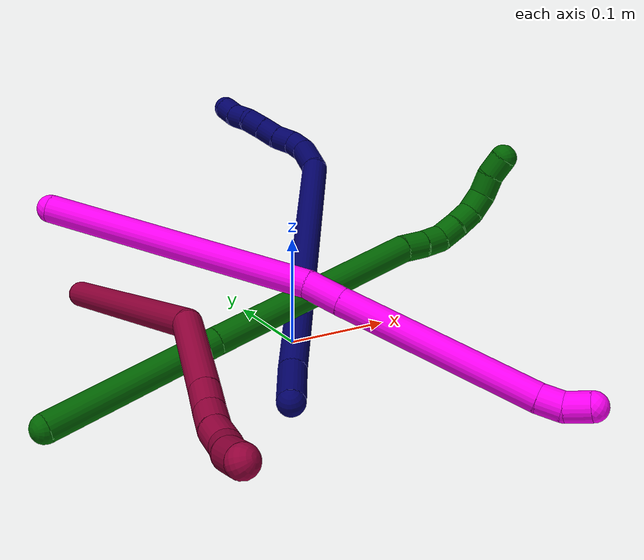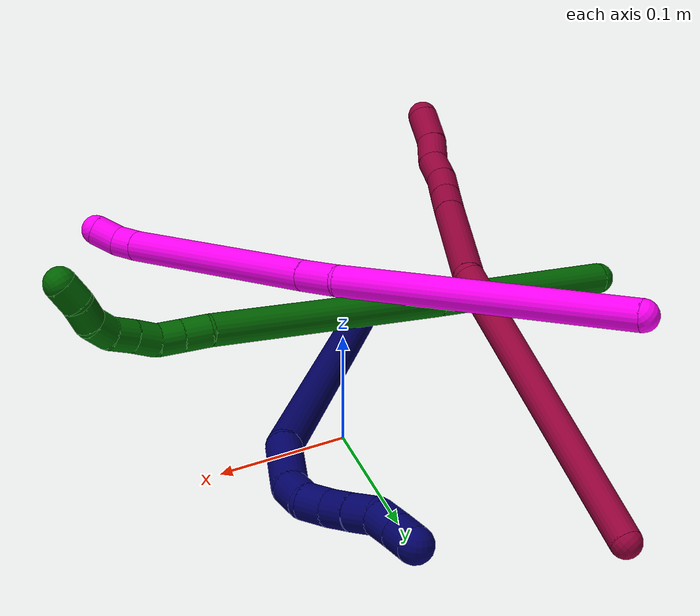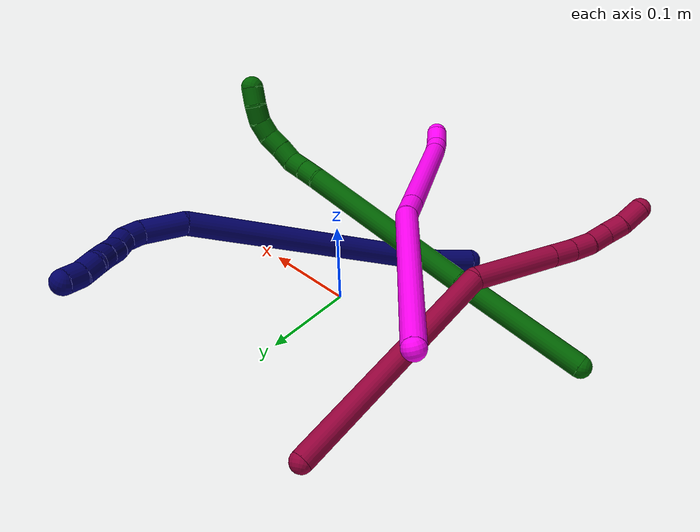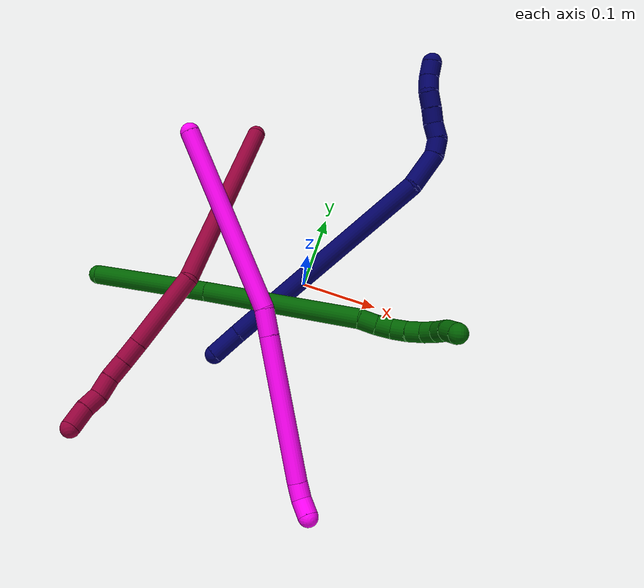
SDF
<sdf version="1.7">
 <world name="default">
  <model name="6">
   <static>0</static>
   <link name="6">
    <collision name="collision-cylinder-e_1_1_4">
     <pose>0.026273 -0.004799 -0.073867 3.07671 0.34106 2.76906</pose>
     <geometry><cylinder><radius>0.0125</radius><length>0.157095</length></cylinder></geometry>
     <surface>
      <friction><ode><mu>1.16</mu><mu2>1.16</mu2><slip1>0</slip1><slip2>0</slip2></ode></friction>
      <contact><ode><kp>1e+06</kp><kd>1</kd><max_vel>0</max_vel><min_depth>0.001</min_depth></ode></contact>
     </surface>
    </collision>
    <visual name="visual-cylinder-e_1_1_4">
     <pose>0.026273 -0.004799 -0.073867 3.07671 0.34106 2.76906</pose>
     <geometry><cylinder><radius>0.0125</radius><length>0.157095</length></cylinder></geometry>
     <material><ambient>0 0.392157 0.003922 1</ambient></material>
    </visual>
    <collision name="collision-cylinder-e_2_4_5">
     <pose>0.086943 -0.01743 -0.242009 3.05872 0.348746 2.67929</pose>
     <geometry><cylinder><radius>0.0125</radius><length>0.201316</length></cylinder></geometry>
     <surface>
      <friction><ode><mu>1.16</mu><mu2>1.16</mu2><slip1>0</slip1><slip2>0</slip2></ode></friction>
      <contact><ode><kp>1e+06</kp><kd>1</kd><max_vel>0</max_vel><min_depth>0.001</min_depth></ode></contact>
     </surface>
    </collision>
    <visual name="visual-cylinder-e_2_4_5">
     <pose>0.086943 -0.01743 -0.242009 3.05872 0.348746 2.67929</pose>
     <geometry><cylinder><radius>0.0125</radius><length>0.201316</length></cylinder></geometry>
     <material><ambient>0 0.392157 0.003922 1</ambient></material>
    </visual>
    <collision name="collision-cylinder-e_3_5_6">
     <pose>0.123873 -0.028022 -0.346401 2.87512 0.237029 1.45273</pose>
     <geometry><cylinder><radius>0.0125</radius><length>0.02158</length></cylinder></geometry>
     <surface>
      <friction><ode><mu>1.16</mu><mu2>1.16</mu2><slip1>0</slip1><slip2>0</slip2></ode></friction>
      <contact><ode><kp>1e+06</kp><kd>1</kd><max_vel>0</max_vel><min_depth>0.001</min_depth></ode></contact>
     </surface>
    </collision>
    <visual name="visual-cylinder-e_3_5_6">
     <pose>0.123873 -0.028022 -0.346401 2.87512 0.237029 1.45273</pose>
     <geometry><cylinder><radius>0.0125</radius><length>0.02158</length></cylinder></geometry>
     <material><ambient>0 0.392157 0.003922 1</ambient></material>
    </visual>
    <collision name="collision-cylinder-e_4_6_7">
     <pose>0.129125 -0.032367 -0.366013 2.97637 0.275204 2.06379</pose>
     <geometry><cylinder><radius>0.0125</radius><length>0.020003</length></cylinder></geometry>
     <surface>
      <friction><ode><mu>1.16</mu><mu2>1.16</mu2><slip1>0</slip1><slip2>0</slip2></ode></friction>
      <contact><ode><kp>1e+06</kp><kd>1</kd><max_vel>0</max_vel><min_depth>0.001</min_depth></ode></contact>
     </surface>
    </collision>
    <visual name="visual-cylinder-e_4_6_7">
     <pose>0.129125 -0.032367 -0.366013 2.97637 0.275204 2.06379</pose>
     <geometry><cylinder><radius>0.0125</radius><length>0.020003</length></cylinder></geometry>
     <material><ambient>0 0.392157 0.003922 1</ambient></material>
    </visual>
    <collision name="collision-cylinder-e_5_7_8">
     <pose>0.137788 -0.034206 -0.383545 3.10985 0.636614 3.04533</pose>
     <geometry><cylinder><radius>0.0125</radius><length>0.020001</length></cylinder></geometry>
     <surface>
      <friction><ode><mu>1.16</mu><mu2>1.16</mu2><slip1>0</slip1><slip2>0</slip2></ode></friction>
      <contact><ode><kp>1e+06</kp><kd>1</kd><max_vel>0</max_vel><min_depth>0.001</min_depth></ode></contact>
     </surface>
    </collision>
    <visual name="visual-cylinder-e_5_7_8">
     <pose>0.137788 -0.034206 -0.383545 3.10985 0.636614 3.04533</pose>
     <geometry><cylinder><radius>0.0125</radius><length>0.020001</length></cylinder></geometry>
     <material><ambient>0 0.392157 0.003922 1</ambient></material>
    </visual>
    <collision name="collision-cylinder-e_6_8_9">
     <pose>0.149275 -0.033827 -0.399884 -3.06535 0.587275 -2.89067</pose>
     <geometry><cylinder><radius>0.0125</radius><length>0.020003</length></cylinder></geometry>
     <surface>
      <friction><ode><mu>1.16</mu><mu2>1.16</mu2><slip1>0</slip1><slip2>0</slip2></ode></friction>
      <contact><ode><kp>1e+06</kp><kd>1</kd><max_vel>0</max_vel><min_depth>0.001</min_depth></ode></contact>
     </surface>
    </collision>
    <visual name="visual-cylinder-e_6_8_9">
     <pose>0.149275 -0.033827 -0.399884 -3.06535 0.587275 -2.89067</pose>
     <geometry><cylinder><radius>0.0125</radius><length>0.020003</length></cylinder></geometry>
     <material><ambient>0 0.392157 0.003922 1</ambient></material>
    </visual>
    <collision name="collision-cylinder-e_7_9_10">
     <pose>0.162672 -0.031494 -0.414137 -2.86352 0.903448 -2.57997</pose>
     <geometry><cylinder><radius>0.0125</radius><length>0.02</length></cylinder></geometry>
     <surface>
      <friction><ode><mu>1.16</mu><mu2>1.16</mu2><slip1>0</slip1><slip2>0</slip2></ode></friction>
      <contact><ode><kp>1e+06</kp><kd>1</kd><max_vel>0</max_vel><min_depth>0.001</min_depth></ode></contact>
     </surface>
    </collision>
    <visual name="visual-cylinder-e_7_9_10">
     <pose>0.162672 -0.031494 -0.414137 -2.86352 0.903448 -2.57997</pose>
     <geometry><cylinder><radius>0.0125</radius><length>0.02</length></cylinder></geometry>
     <material><ambient>0 0.392157 0.003922 1</ambient></material>
    </visual>
    <collision name="collision-cylinder-e_8_10_11">
     <pose>0.179943 -0.027785 -0.422787 -2.50147 1.22764 -2.2622</pose>
     <geometry><cylinder><radius>0.0125</radius><length>0.02</length></cylinder></geometry>
     <surface>
      <friction><ode><mu>1.16</mu><mu2>1.16</mu2><slip1>0</slip1><slip2>0</slip2></ode></friction>
      <contact><ode><kp>1e+06</kp><kd>1</kd><max_vel>0</max_vel><min_depth>0.001</min_depth></ode></contact>
     </surface>
    </collision>
    <visual name="visual-cylinder-e_8_10_11">
     <pose>0.179943 -0.027785 -0.422787 -2.50147 1.22764 -2.2622</pose>
     <geometry><cylinder><radius>0.0125</radius><length>0.02</length></cylinder></geometry>
     <material><ambient>0 0.392157 0.003922 1</ambient></material>
    </visual>
    <collision name="collision-cylinder-e_9_11_2">
     <pose>0.198802 -0.026178 -0.428758 3.01901 1.23487 2.96917</pose>
     <geometry><cylinder><radius>0.0125</radius><length>0.020001</length></cylinder></geometry>
     <surface>
      <friction><ode><mu>1.16</mu><mu2>1.16</mu2><slip1>0</slip1><slip2>0</slip2></ode></friction>
      <contact><ode><kp>1e+06</kp><kd>1</kd><max_vel>0</max_vel><min_depth>0.001</min_depth></ode></contact>
     </surface>
    </collision>
    <visual name="visual-cylinder-e_9_11_2">
     <pose>0.198802 -0.026178 -0.428758 3.01901 1.23487 2.96917</pose>
     <geometry><cylinder><radius>0.0125</radius><length>0.020001</length></cylinder></geometry>
     <material><ambient>0 0.392157 0.003922 1</ambient></material>
    </visual>
    <collision name="collision-sphere-2">
     <pose>0.208243 -0.026582 -0.432029 0 -0 0</pose>
     <geometry><sphere><radius>0.0125</radius></sphere></geometry>
     <surface>
      <friction><ode><mu>1.16</mu><mu2>1.16</mu2><slip1>0</slip1><slip2>0</slip2></ode></friction>
      <contact><ode><kp>1e+06</kp><kd>1</kd><max_vel>0</max_vel><min_depth>0.001</min_depth></ode></contact>
     </surface>
    </collision>
    <visual name="visual-sphere-2">
     <pose>0.208243 -0.026582 -0.432029 0 -0 0</pose>
     <geometry><sphere><radius>0.0125</radius></sphere></geometry>
     <material><ambient>0 0.392157 0.003922 1</ambient></material>
    </visual>
    <collision name="collision-sphere-11">
     <pose>0.18936 -0.025775 -0.425486 0 -0 0</pose>
     <geometry><sphere><radius>0.0125</radius></sphere></geometry>
     <surface>
      <friction><ode><mu>1.16</mu><mu2>1.16</mu2><slip1>0</slip1><slip2>0</slip2></ode></friction>
      <contact><ode><kp>1e+06</kp><kd>1</kd><max_vel>0</max_vel><min_depth>0.001</min_depth></ode></contact>
     </surface>
    </collision>
    <visual name="visual-sphere-11">
     <pose>0.18936 -0.025775 -0.425486 0 -0 0</pose>
     <geometry><sphere><radius>0.0125</radius></sphere></geometry>
     <material><ambient>0 0.392157 0.003922 1</ambient></material>
    </visual>
    <collision name="collision-sphere-10">
     <pose>0.170526 -0.029795 -0.420089 0 -0 0</pose>
     <geometry><sphere><radius>0.0125</radius></sphere></geometry>
     <surface>
      <friction><ode><mu>1.16</mu><mu2>1.16</mu2><slip1>0</slip1><slip2>0</slip2></ode></friction>
      <contact><ode><kp>1e+06</kp><kd>1</kd><max_vel>0</max_vel><min_depth>0.001</min_depth></ode></contact>
     </surface>
    </collision>
    <visual name="visual-sphere-10">
     <pose>0.170526 -0.029795 -0.420089 0 -0 0</pose>
     <geometry><sphere><radius>0.0125</radius></sphere></geometry>
     <material><ambient>0 0.392157 0.003922 1</ambient></material>
    </visual>
    <collision name="collision-sphere-9">
     <pose>0.154817 -0.033193 -0.408186 0 -0 0</pose>
     <geometry><sphere><radius>0.0125</radius></sphere></geometry>
     <surface>
      <friction><ode><mu>1.16</mu><mu2>1.16</mu2><slip1>0</slip1><slip2>0</slip2></ode></friction>
      <contact><ode><kp>1e+06</kp><kd>1</kd><max_vel>0</max_vel><min_depth>0.001</min_depth></ode></contact>
     </surface>
    </collision>
    <visual name="visual-sphere-9">
     <pose>0.154817 -0.033193 -0.408186 0 -0 0</pose>
     <geometry><sphere><radius>0.0125</radius></sphere></geometry>
     <material><ambient>0 0.392157 0.003922 1</ambient></material>
    </visual>
    <collision name="collision-sphere-4">
     <pose>0.052546 -0.009599 -0.147735 0 -0 0</pose>
     <geometry><sphere><radius>0.0125</radius></sphere></geometry>
     <surface>
      <friction><ode><mu>1.16</mu><mu2>1.16</mu2><slip1>0</slip1><slip2>0</slip2></ode></friction>
      <contact><ode><kp>1e+06</kp><kd>1</kd><max_vel>0</max_vel><min_depth>0.001</min_depth></ode></contact>
     </surface>
    </collision>
    <visual name="visual-sphere-4">
     <pose>0.052546 -0.009599 -0.147735 0 -0 0</pose>
     <geometry><sphere><radius>0.0125</radius></sphere></geometry>
     <material><ambient>0 0.392157 0.003922 1</ambient></material>
    </visual>
    <collision name="collision-sphere-1">
     <geometry><sphere><radius>0.0125</radius></sphere></geometry>
     <surface>
      <friction><ode><mu>1.16</mu><mu2>1.16</mu2><slip1>0</slip1><slip2>0</slip2></ode></friction>
      <contact><ode><kp>1e+06</kp><kd>1</kd><max_vel>0</max_vel><min_depth>0.001</min_depth></ode></contact>
     </surface>
    </collision>
    <visual name="visual-sphere-1">
     <geometry><sphere><radius>0.0125</radius></sphere></geometry>
     <material><ambient>0 0.392157 0.003922 1</ambient></material>
    </visual>
    <collision name="collision-sphere-8">
     <pose>0.143733 -0.034461 -0.391582 0 -0 0</pose>
     <geometry><sphere><radius>0.0125</radius></sphere></geometry>
     <surface>
      <friction><ode><mu>1.16</mu><mu2>1.16</mu2><slip1>0</slip1><slip2>0</slip2></ode></friction>
      <contact><ode><kp>1e+06</kp><kd>1</kd><max_vel>0</max_vel><min_depth>0.001</min_depth></ode></contact>
     </surface>
    </collision>
    <visual name="visual-sphere-8">
     <pose>0.143733 -0.034461 -0.391582 0 -0 0</pose>
     <geometry><sphere><radius>0.0125</radius></sphere></geometry>
     <material><ambient>0 0.392157 0.003922 1</ambient></material>
    </visual>
    <collision name="collision-sphere-5">
     <pose>0.12134 -0.02526 -0.336282 0 -0 0</pose>
     <geometry><sphere><radius>0.0125</radius></sphere></geometry>
     <surface>
      <friction><ode><mu>1.16</mu><mu2>1.16</mu2><slip1>0</slip1><slip2>0</slip2></ode></friction>
      <contact><ode><kp>1e+06</kp><kd>1</kd><max_vel>0</max_vel><min_depth>0.001</min_depth></ode></contact>
     </surface>
    </collision>
    <visual name="visual-sphere-5">
     <pose>0.12134 -0.02526 -0.336282 0 -0 0</pose>
     <geometry><sphere><radius>0.0125</radius></sphere></geometry>
     <material><ambient>0 0.392157 0.003922 1</ambient></material>
    </visual>
    <collision name="collision-sphere-6">
     <pose>0.126407 -0.030784 -0.356519 0 -0 0</pose>
     <geometry><sphere><radius>0.0125</radius></sphere></geometry>
     <surface>
      <friction><ode><mu>1.16</mu><mu2>1.16</mu2><slip1>0</slip1><slip2>0</slip2></ode></friction>
      <contact><ode><kp>1e+06</kp><kd>1</kd><max_vel>0</max_vel><min_depth>0.001</min_depth></ode></contact>
     </surface>
    </collision>
    <visual name="visual-sphere-6">
     <pose>0.126407 -0.030784 -0.356519 0 -0 0</pose>
     <geometry><sphere><radius>0.0125</radius></sphere></geometry>
     <material><ambient>0 0.392157 0.003922 1</ambient></material>
    </visual>
    <collision name="collision-sphere-7">
     <pose>0.131843 -0.033951 -0.375507 0 -0 0</pose>
     <geometry><sphere><radius>0.0125</radius></sphere></geometry>
     <surface>
      <friction><ode><mu>1.16</mu><mu2>1.16</mu2><slip1>0</slip1><slip2>0</slip2></ode></friction>
      <contact><ode><kp>1e+06</kp><kd>1</kd><max_vel>0</max_vel><min_depth>0.001</min_depth></ode></contact>
     </surface>
    </collision>
    <visual name="visual-sphere-7">
     <pose>0.131843 -0.033951 -0.375507 0 -0 0</pose>
     <geometry><sphere><radius>0.0125</radius></sphere></geometry>
     <material><ambient>0 0.392157 0.003922 1</ambient></material>
    </visual>
    <inertial>
     <pose>0.086914 -0.01717 -0.232212 0 -0 0</pose>
     <mass>0.5</mass>
     <inertia>
      <ixx>-0.000452</ixx>
      <ixy>0</ixy>
      <ixz>0</ixz>
      <iyy>0.001339</iyy>
      <iyz>0</iyz>
      <izz>-0.000311</izz>
     </inertia>
    </inertial>
   </link>
   <pose>-0.263988 -0.081896 0.01161 1.42659 -1.15291 -1.15266</pose>
  </model>
  <model name="7">
   <static>0</static>
   <link name="7">
    <collision name="collision-cylinder-e_1_1_4">
     <pose>0.01379 0.015444 -0.002782 -1.74899 0.720953 -0.847207</pose>
     <geometry><cylinder><radius>0.0125</radius><length>0.041781</length></cylinder></geometry>
     <surface>
      <friction><ode><mu>1.16</mu><mu2>1.16</mu2><slip1>0</slip1><slip2>0</slip2></ode></friction>
      <contact><ode><kp>1e+06</kp><kd>1</kd><max_vel>0</max_vel><min_depth>0.001</min_depth></ode></contact>
     </surface>
    </collision>
    <visual name="visual-cylinder-e_1_1_4">
     <pose>0.01379 0.015444 -0.002782 -1.74899 0.720953 -0.847207</pose>
     <geometry><cylinder><radius>0.0125</radius><length>0.041781</length></cylinder></geometry>
     <material><ambient>0.003922 0 0.403922 1</ambient></material>
    </visual>
    <collision name="collision-cylinder-e_2_4_5">
     <pose>0.130347 0.13226 -0.006504 -1.58008 0.792209 -0.79884</pose>
     <geometry><cylinder><radius>0.0125</radius><length>0.288709</length></cylinder></geometry>
     <surface>
      <friction><ode><mu>1.16</mu><mu2>1.16</mu2><slip1>0</slip1><slip2>0</slip2></ode></friction>
      <contact><ode><kp>1e+06</kp><kd>1</kd><max_vel>0</max_vel><min_depth>0.001</min_depth></ode></contact>
     </surface>
    </collision>
    <visual name="visual-cylinder-e_2_4_5">
     <pose>0.130347 0.13226 -0.006504 -1.58008 0.792209 -0.79884</pose>
     <geometry><cylinder><radius>0.0125</radius><length>0.288709</length></cylinder></geometry>
     <material><ambient>0.003922 0 0.403922 1</ambient></material>
    </visual>
    <collision name="collision-cylinder-e_3_5_6">
     <pose>0.243964 0.254672 -0.011853 -1.77729 0.46746 -0.570267</pose>
     <geometry><cylinder><radius>0.0125</radius><length>0.04816</length></cylinder></geometry>
     <surface>
      <friction><ode><mu>1.16</mu><mu2>1.16</mu2><slip1>0</slip1><slip2>0</slip2></ode></friction>
      <contact><ode><kp>1e+06</kp><kd>1</kd><max_vel>0</max_vel><min_depth>0.001</min_depth></ode></contact>
     </surface>
    </collision>
    <visual name="visual-cylinder-e_3_5_6">
     <pose>0.243964 0.254672 -0.011853 -1.77729 0.46746 -0.570267</pose>
     <geometry><cylinder><radius>0.0125</radius><length>0.04816</length></cylinder></geometry>
     <material><ambient>0.003922 0 0.403922 1</ambient></material>
    </visual>
    <collision name="collision-cylinder-e_4_6_7">
     <pose>0.25597 0.286218 -0.016538 -1.59721 0.109388 -0.11231</pose>
     <geometry><cylinder><radius>0.0125</radius><length>0.021145</length></cylinder></geometry>
     <surface>
      <friction><ode><mu>1.16</mu><mu2>1.16</mu2><slip1>0</slip1><slip2>0</slip2></ode></friction>
      <contact><ode><kp>1e+06</kp><kd>1</kd><max_vel>0</max_vel><min_depth>0.001</min_depth></ode></contact>
     </surface>
    </collision>
    <visual name="visual-cylinder-e_4_6_7">
     <pose>0.25597 0.286218 -0.016538 -1.59721 0.109388 -0.11231</pose>
     <geometry><cylinder><radius>0.0125</radius><length>0.021145</length></cylinder></geometry>
     <material><ambient>0.003922 0 0.403922 1</ambient></material>
    </visual>
    <collision name="collision-cylinder-e_5_7_8">
     <pose>0.253884 0.306162 -0.015683 -1.45144 -0.328459 0.291978</pose>
     <geometry><cylinder><radius>0.0125</radius><length>0.020085</length></cylinder></geometry>
     <surface>
      <friction><ode><mu>1.16</mu><mu2>1.16</mu2><slip1>0</slip1><slip2>0</slip2></ode></friction>
      <contact><ode><kp>1e+06</kp><kd>1</kd><max_vel>0</max_vel><min_depth>0.001</min_depth></ode></contact>
     </surface>
    </collision>
    <visual name="visual-cylinder-e_5_7_8">
     <pose>0.253884 0.306162 -0.015683 -1.45144 -0.328459 0.291978</pose>
     <geometry><cylinder><radius>0.0125</radius><length>0.020085</length></cylinder></geometry>
     <material><ambient>0.003922 0 0.403922 1</ambient></material>
    </visual>
    <collision name="collision-cylinder-e_6_8_9">
     <pose>0.248931 0.325188 -0.012126 -1.32298 -0.171551 0.13368</pose>
     <geometry><cylinder><radius>0.0125</radius><length>0.020075</length></cylinder></geometry>
     <surface>
      <friction><ode><mu>1.16</mu><mu2>1.16</mu2><slip1>0</slip1><slip2>0</slip2></ode></friction>
      <contact><ode><kp>1e+06</kp><kd>1</kd><max_vel>0</max_vel><min_depth>0.001</min_depth></ode></contact>
     </surface>
    </collision>
    <visual name="visual-cylinder-e_6_8_9">
     <pose>0.248931 0.325188 -0.012126 -1.32298 -0.171551 0.13368</pose>
     <geometry><cylinder><radius>0.0125</radius><length>0.020075</length></cylinder></geometry>
     <material><ambient>0.003922 0 0.403922 1</ambient></material>
    </visual>
    <collision name="collision-cylinder-e_7_9_10">
     <pose>0.244914 0.344177 -0.007182 -1.30912 -0.232432 0.178705</pose>
     <geometry><cylinder><radius>0.0125</radius><length>0.020001</length></cylinder></geometry>
     <surface>
      <friction><ode><mu>1.16</mu><mu2>1.16</mu2><slip1>0</slip1><slip2>0</slip2></ode></friction>
      <contact><ode><kp>1e+06</kp><kd>1</kd><max_vel>0</max_vel><min_depth>0.001</min_depth></ode></contact>
     </surface>
    </collision>
    <visual name="visual-cylinder-e_7_9_10">
     <pose>0.244914 0.344177 -0.007182 -1.30912 -0.232432 0.178705</pose>
     <geometry><cylinder><radius>0.0125</radius><length>0.020001</length></cylinder></geometry>
     <material><ambient>0.003922 0 0.403922 1</ambient></material>
    </visual>
    <collision name="collision-cylinder-e_8_10_11">
     <pose>0.241659 0.363484 -0.00573 -1.67794 -0.095193 0.105961</pose>
     <geometry><cylinder><radius>0.0125</radius><length>0.020019</length></cylinder></geometry>
     <surface>
      <friction><ode><mu>1.16</mu><mu2>1.16</mu2><slip1>0</slip1><slip2>0</slip2></ode></friction>
      <contact><ode><kp>1e+06</kp><kd>1</kd><max_vel>0</max_vel><min_depth>0.001</min_depth></ode></contact>
     </surface>
    </collision>
    <visual name="visual-cylinder-e_8_10_11">
     <pose>0.241659 0.363484 -0.00573 -1.67794 -0.095193 0.105961</pose>
     <geometry><cylinder><radius>0.0125</radius><length>0.020019</length></cylinder></geometry>
     <material><ambient>0.003922 0 0.403922 1</ambient></material>
    </visual>
    <collision name="collision-cylinder-e_9_11_2">
     <pose>0.241723 0.383351 -0.006692 -1.56035 0.101585 -0.100531</pose>
     <geometry><cylinder><radius>0.0125</radius><length>0.020024</length></cylinder></geometry>
     <surface>
      <friction><ode><mu>1.16</mu><mu2>1.16</mu2><slip1>0</slip1><slip2>0</slip2></ode></friction>
      <contact><ode><kp>1e+06</kp><kd>1</kd><max_vel>0</max_vel><min_depth>0.001</min_depth></ode></contact>
     </surface>
    </collision>
    <visual name="visual-cylinder-e_9_11_2">
     <pose>0.241723 0.383351 -0.006692 -1.56035 0.101585 -0.100531</pose>
     <geometry><cylinder><radius>0.0125</radius><length>0.020024</length></cylinder></geometry>
     <material><ambient>0.003922 0 0.403922 1</ambient></material>
    </visual>
    <collision name="collision-sphere-2">
     <pose>0.242738 0.393311 -0.006588 0 -0 0</pose>
     <geometry><sphere><radius>0.0125</radius></sphere></geometry>
     <surface>
      <friction><ode><mu>1.16</mu><mu2>1.16</mu2><slip1>0</slip1><slip2>0</slip2></ode></friction>
      <contact><ode><kp>1e+06</kp><kd>1</kd><max_vel>0</max_vel><min_depth>0.001</min_depth></ode></contact>
     </surface>
    </collision>
    <visual name="visual-sphere-2">
     <pose>0.242738 0.393311 -0.006588 0 -0 0</pose>
     <geometry><sphere><radius>0.0125</radius></sphere></geometry>
     <material><ambient>0.003922 0 0.403922 1</ambient></material>
    </visual>
    <collision name="collision-sphere-11">
     <pose>0.240708 0.373391 -0.006796 0 -0 0</pose>
     <geometry><sphere><radius>0.0125</radius></sphere></geometry>
     <surface>
      <friction><ode><mu>1.16</mu><mu2>1.16</mu2><slip1>0</slip1><slip2>0</slip2></ode></friction>
      <contact><ode><kp>1e+06</kp><kd>1</kd><max_vel>0</max_vel><min_depth>0.001</min_depth></ode></contact>
     </surface>
    </collision>
    <visual name="visual-sphere-11">
     <pose>0.240708 0.373391 -0.006796 0 -0 0</pose>
     <geometry><sphere><radius>0.0125</radius></sphere></geometry>
     <material><ambient>0.003922 0 0.403922 1</ambient></material>
    </visual>
    <collision name="collision-sphere-10">
     <pose>0.242611 0.353577 -0.004665 0 -0 0</pose>
     <geometry><sphere><radius>0.0125</radius></sphere></geometry>
     <surface>
      <friction><ode><mu>1.16</mu><mu2>1.16</mu2><slip1>0</slip1><slip2>0</slip2></ode></friction>
      <contact><ode><kp>1e+06</kp><kd>1</kd><max_vel>0</max_vel><min_depth>0.001</min_depth></ode></contact>
     </surface>
    </collision>
    <visual name="visual-sphere-10">
     <pose>0.242611 0.353577 -0.004665 0 -0 0</pose>
     <geometry><sphere><radius>0.0125</radius></sphere></geometry>
     <material><ambient>0.003922 0 0.403922 1</ambient></material>
    </visual>
    <collision name="collision-sphere-9">
     <pose>0.247218 0.334776 -0.0097 0 -0 0</pose>
     <geometry><sphere><radius>0.0125</radius></sphere></geometry>
     <surface>
      <friction><ode><mu>1.16</mu><mu2>1.16</mu2><slip1>0</slip1><slip2>0</slip2></ode></friction>
      <contact><ode><kp>1e+06</kp><kd>1</kd><max_vel>0</max_vel><min_depth>0.001</min_depth></ode></contact>
     </surface>
    </collision>
    <visual name="visual-sphere-9">
     <pose>0.247218 0.334776 -0.0097 0 -0 0</pose>
     <geometry><sphere><radius>0.0125</radius></sphere></geometry>
     <material><ambient>0.003922 0 0.403922 1</ambient></material>
    </visual>
    <collision name="collision-sphere-4">
     <pose>0.02758 0.030888 -0.005563 0 -0 0</pose>
     <geometry><sphere><radius>0.0125</radius></sphere></geometry>
     <surface>
      <friction><ode><mu>1.16</mu><mu2>1.16</mu2><slip1>0</slip1><slip2>0</slip2></ode></friction>
      <contact><ode><kp>1e+06</kp><kd>1</kd><max_vel>0</max_vel><min_depth>0.001</min_depth></ode></contact>
     </surface>
    </collision>
    <visual name="visual-sphere-4">
     <pose>0.02758 0.030888 -0.005563 0 -0 0</pose>
     <geometry><sphere><radius>0.0125</radius></sphere></geometry>
     <material><ambient>0.003922 0 0.403922 1</ambient></material>
    </visual>
    <collision name="collision-sphere-1">
     <geometry><sphere><radius>0.0125</radius></sphere></geometry>
     <surface>
      <friction><ode><mu>1.16</mu><mu2>1.16</mu2><slip1>0</slip1><slip2>0</slip2></ode></friction>
      <contact><ode><kp>1e+06</kp><kd>1</kd><max_vel>0</max_vel><min_depth>0.001</min_depth></ode></contact>
     </surface>
    </collision>
    <visual name="visual-sphere-1">
     <geometry><sphere><radius>0.0125</radius></sphere></geometry>
     <material><ambient>0.003922 0 0.403922 1</ambient></material>
    </visual>
    <collision name="collision-sphere-8">
     <pose>0.250645 0.3156 -0.014552 0 -0 0</pose>
     <geometry><sphere><radius>0.0125</radius></sphere></geometry>
     <surface>
      <friction><ode><mu>1.16</mu><mu2>1.16</mu2><slip1>0</slip1><slip2>0</slip2></ode></friction>
      <contact><ode><kp>1e+06</kp><kd>1</kd><max_vel>0</max_vel><min_depth>0.001</min_depth></ode></contact>
     </surface>
    </collision>
    <visual name="visual-sphere-8">
     <pose>0.250645 0.3156 -0.014552 0 -0 0</pose>
     <geometry><sphere><radius>0.0125</radius></sphere></geometry>
     <material><ambient>0.003922 0 0.403922 1</ambient></material>
    </visual>
    <collision name="collision-sphere-5">
     <pose>0.233113 0.233632 -0.007445 0 -0 0</pose>
     <geometry><sphere><radius>0.0125</radius></sphere></geometry>
     <surface>
      <friction><ode><mu>1.16</mu><mu2>1.16</mu2><slip1>0</slip1><slip2>0</slip2></ode></friction>
      <contact><ode><kp>1e+06</kp><kd>1</kd><max_vel>0</max_vel><min_depth>0.001</min_depth></ode></contact>
     </surface>
    </collision>
    <visual name="visual-sphere-5">
     <pose>0.233113 0.233632 -0.007445 0 -0 0</pose>
     <geometry><sphere><radius>0.0125</radius></sphere></geometry>
     <material><ambient>0.003922 0 0.403922 1</ambient></material>
    </visual>
    <collision name="collision-sphere-6">
     <pose>0.254815 0.275712 -0.01626 0 -0 0</pose>
     <geometry><sphere><radius>0.0125</radius></sphere></geometry>
     <surface>
      <friction><ode><mu>1.16</mu><mu2>1.16</mu2><slip1>0</slip1><slip2>0</slip2></ode></friction>
      <contact><ode><kp>1e+06</kp><kd>1</kd><max_vel>0</max_vel><min_depth>0.001</min_depth></ode></contact>
     </surface>
    </collision>
    <visual name="visual-sphere-6">
     <pose>0.254815 0.275712 -0.01626 0 -0 0</pose>
     <geometry><sphere><radius>0.0125</radius></sphere></geometry>
     <material><ambient>0.003922 0 0.403922 1</ambient></material>
    </visual>
    <collision name="collision-sphere-7">
     <pose>0.257124 0.296724 -0.016815 0 -0 0</pose>
     <geometry><sphere><radius>0.0125</radius></sphere></geometry>
     <surface>
      <friction><ode><mu>1.16</mu><mu2>1.16</mu2><slip1>0</slip1><slip2>0</slip2></ode></friction>
      <contact><ode><kp>1e+06</kp><kd>1</kd><max_vel>0</max_vel><min_depth>0.001</min_depth></ode></contact>
     </surface>
    </collision>
    <visual name="visual-sphere-7">
     <pose>0.257124 0.296724 -0.016815 0 -0 0</pose>
     <geometry><sphere><radius>0.0125</radius></sphere></geometry>
     <material><ambient>0.003922 0 0.403922 1</ambient></material>
    </visual>
    <inertial>
     <pose>0.160087 0.183323 -0.007731 0 -0 0</pose>
     <mass>0.5</mass>
     <inertia><ixx>4e-06</ixx><ixy>0</ixy><ixz>0</ixz><iyy>2.7e-05</iyy><iyz>0</iyz><izz>-0.002886</izz></inertia>
    </inertial>
   </link>
   <pose>-0.077833 -0.134448 0.01149 0.242651 -0.311762 0.139407</pose>
  </model>
  <model name="8">
   <static>0</static>
   <link name="8">
    <collision name="collision-cylinder-e_1_1_4">
     <pose>0.043805 -0.051396 0.113165 0.426313 0.338849 0.074018</pose>
     <geometry><cylinder><radius>0.0125</radius><length>0.263567</length></cylinder></geometry>
     <surface>
      <friction><ode><mu>1.16</mu><mu2>1.16</mu2><slip1>0</slip1><slip2>0</slip2></ode></friction>
      <contact><ode><kp>1e+06</kp><kd>1</kd><max_vel>0</max_vel><min_depth>0.001</min_depth></ode></contact>
     </surface>
    </collision>
    <visual name="visual-cylinder-e_1_1_4">
     <pose>0.043805 -0.051396 0.113165 0.426313 0.338849 0.074018</pose>
     <geometry><cylinder><radius>0.0125</radius><length>0.263567</length></cylinder></geometry>
     <material><ambient>0.584314 0 0.227451 1</ambient></material>
    </visual>
    <collision name="collision-cylinder-e_2_4_5">
     <pose>0.118859 -0.133004 0.254132 0.826937 0.650562 0.293822</pose>
     <geometry><cylinder><radius>0.0125</radius><length>0.103193</length></cylinder></geometry>
     <surface>
      <friction><ode><mu>1.16</mu><mu2>1.16</mu2><slip1>0</slip1><slip2>0</slip2></ode></friction>
      <contact><ode><kp>1e+06</kp><kd>1</kd><max_vel>0</max_vel><min_depth>0.001</min_depth></ode></contact>
     </surface>
    </collision>
    <visual name="visual-cylinder-e_2_4_5">
     <pose>0.118859 -0.133004 0.254132 0.826937 0.650562 0.293822</pose>
     <geometry><cylinder><radius>0.0125</radius><length>0.103193</length></cylinder></geometry>
     <material><ambient>0.584314 0 0.227451 1</ambient></material>
    </visual>
    <collision name="collision-cylinder-e_3_5_6">
     <pose>0.158651 -0.171827 0.289623 0.841884 0.637147 0.293193</pose>
     <geometry><cylinder><radius>0.0125</radius><length>0.028724</length></cylinder></geometry>
     <surface>
      <friction><ode><mu>1.16</mu><mu2>1.16</mu2><slip1>0</slip1><slip2>0</slip2></ode></friction>
      <contact><ode><kp>1e+06</kp><kd>1</kd><max_vel>0</max_vel><min_depth>0.001</min_depth></ode></contact>
     </surface>
    </collision>
    <visual name="visual-cylinder-e_3_5_6">
     <pose>0.158651 -0.171827 0.289623 0.841884 0.637147 0.293193</pose>
     <geometry><cylinder><radius>0.0125</radius><length>0.028724</length></cylinder></geometry>
     <material><ambient>0.584314 0 0.227451 1</ambient></material>
    </visual>
    <collision name="collision-cylinder-e_4_6_7">
     <pose>0.174108 -0.188468 0.304911 0.812915 0.558772 0.245726</pose>
     <geometry><cylinder><radius>0.0125</radius><length>0.026078</length></cylinder></geometry>
     <surface>
      <friction><ode><mu>1.16</mu><mu2>1.16</mu2><slip1>0</slip1><slip2>0</slip2></ode></friction>
      <contact><ode><kp>1e+06</kp><kd>1</kd><max_vel>0</max_vel><min_depth>0.001</min_depth></ode></contact>
     </surface>
    </collision>
    <visual name="visual-cylinder-e_4_6_7">
     <pose>0.174108 -0.188468 0.304911 0.812915 0.558772 0.245726</pose>
     <geometry><cylinder><radius>0.0125</radius><length>0.026078</length></cylinder></geometry>
     <material><ambient>0.584314 0 0.227451 1</ambient></material>
    </visual>
    <collision name="collision-cylinder-e_5_7_8">
     <pose>0.187564 -0.202976 0.321653 0.616476 0.528615 0.171911</pose>
     <geometry><cylinder><radius>0.0125</radius><length>0.025953</length></cylinder></geometry>
     <surface>
      <friction><ode><mu>1.16</mu><mu2>1.16</mu2><slip1>0</slip1><slip2>0</slip2></ode></friction>
      <contact><ode><kp>1e+06</kp><kd>1</kd><max_vel>0</max_vel><min_depth>0.001</min_depth></ode></contact>
     </surface>
    </collision>
    <visual name="visual-cylinder-e_5_7_8">
     <pose>0.187564 -0.202976 0.321653 0.616476 0.528615 0.171911</pose>
     <geometry><cylinder><radius>0.0125</radius><length>0.025953</length></cylinder></geometry>
     <material><ambient>0.584314 0 0.227451 1</ambient></material>
    </visual>
    <collision name="collision-cylinder-e_6_8_9">
     <pose>0.196967 -0.217546 0.338611 0.802768 0.248764 0.10603</pose>
     <geometry><cylinder><radius>0.0125</radius><length>0.023213</length></cylinder></geometry>
     <surface>
      <friction><ode><mu>1.16</mu><mu2>1.16</mu2><slip1>0</slip1><slip2>0</slip2></ode></friction>
      <contact><ode><kp>1e+06</kp><kd>1</kd><max_vel>0</max_vel><min_depth>0.001</min_depth></ode></contact>
     </surface>
    </collision>
    <visual name="visual-cylinder-e_6_8_9">
     <pose>0.196967 -0.217546 0.338611 0.802768 0.248764 0.10603</pose>
     <geometry><cylinder><radius>0.0125</radius><length>0.023213</length></cylinder></geometry>
     <material><ambient>0.584314 0 0.227451 1</ambient></material>
    </visual>
    <collision name="collision-cylinder-e_7_9_2">
     <pose>0.203401 -0.233424 0.358292 0.580745 0.246857 0.074108</pose>
     <geometry><cylinder><radius>0.0125</radius><length>0.029274</length></cylinder></geometry>
     <surface>
      <friction><ode><mu>1.16</mu><mu2>1.16</mu2><slip1>0</slip1><slip2>0</slip2></ode></friction>
      <contact><ode><kp>1e+06</kp><kd>1</kd><max_vel>0</max_vel><min_depth>0.001</min_depth></ode></contact>
     </surface>
    </collision>
    <visual name="visual-cylinder-e_7_9_2">
     <pose>0.203401 -0.233424 0.358292 0.580745 0.246857 0.074108</pose>
     <geometry><cylinder><radius>0.0125</radius><length>0.029274</length></cylinder></geometry>
     <material><ambient>0.584314 0 0.227451 1</ambient></material>
    </visual>
    <collision name="collision-sphere-2">
     <pose>0.206977 -0.241211 0.370158 0 -0 0</pose>
     <geometry><sphere><radius>0.0125</radius></sphere></geometry>
     <surface>
      <friction><ode><mu>1.16</mu><mu2>1.16</mu2><slip1>0</slip1><slip2>0</slip2></ode></friction>
      <contact><ode><kp>1e+06</kp><kd>1</kd><max_vel>0</max_vel><min_depth>0.001</min_depth></ode></contact>
     </surface>
    </collision>
    <visual name="visual-sphere-2">
     <pose>0.206977 -0.241211 0.370158 0 -0 0</pose>
     <geometry><sphere><radius>0.0125</radius></sphere></geometry>
     <material><ambient>0.584314 0 0.227451 1</ambient></material>
    </visual>
    <collision name="collision-sphere-9">
     <pose>0.199824 -0.225637 0.346426 0 -0 0</pose>
     <geometry><sphere><radius>0.0125</radius></sphere></geometry>
     <surface>
      <friction><ode><mu>1.16</mu><mu2>1.16</mu2><slip1>0</slip1><slip2>0</slip2></ode></friction>
      <contact><ode><kp>1e+06</kp><kd>1</kd><max_vel>0</max_vel><min_depth>0.001</min_depth></ode></contact>
     </surface>
    </collision>
    <visual name="visual-sphere-9">
     <pose>0.199824 -0.225637 0.346426 0 -0 0</pose>
     <geometry><sphere><radius>0.0125</radius></sphere></geometry>
     <material><ambient>0.584314 0 0.227451 1</ambient></material>
    </visual>
    <collision name="collision-sphere-4">
     <pose>0.08761 -0.102792 0.226331 0 -0 0</pose>
     <geometry><sphere><radius>0.0125</radius></sphere></geometry>
     <surface>
      <friction><ode><mu>1.16</mu><mu2>1.16</mu2><slip1>0</slip1><slip2>0</slip2></ode></friction>
      <contact><ode><kp>1e+06</kp><kd>1</kd><max_vel>0</max_vel><min_depth>0.001</min_depth></ode></contact>
     </surface>
    </collision>
    <visual name="visual-sphere-4">
     <pose>0.08761 -0.102792 0.226331 0 -0 0</pose>
     <geometry><sphere><radius>0.0125</radius></sphere></geometry>
     <material><ambient>0.584314 0 0.227451 1</ambient></material>
    </visual>
    <collision name="collision-sphere-1">
     <geometry><sphere><radius>0.0125</radius></sphere></geometry>
     <surface>
      <friction><ode><mu>1.16</mu><mu2>1.16</mu2><slip1>0</slip1><slip2>0</slip2></ode></friction>
      <contact><ode><kp>1e+06</kp><kd>1</kd><max_vel>0</max_vel><min_depth>0.001</min_depth></ode></contact>
     </surface>
    </collision>
    <visual name="visual-sphere-1">
     <geometry><sphere><radius>0.0125</radius></sphere></geometry>
     <material><ambient>0.584314 0 0.227451 1</ambient></material>
    </visual>
    <collision name="collision-sphere-8">
     <pose>0.194109 -0.209454 0.330796 0 -0 0</pose>
     <geometry><sphere><radius>0.0125</radius></sphere></geometry>
     <surface>
      <friction><ode><mu>1.16</mu><mu2>1.16</mu2><slip1>0</slip1><slip2>0</slip2></ode></friction>
      <contact><ode><kp>1e+06</kp><kd>1</kd><max_vel>0</max_vel><min_depth>0.001</min_depth></ode></contact>
     </surface>
    </collision>
    <visual name="visual-sphere-8">
     <pose>0.194109 -0.209454 0.330796 0 -0 0</pose>
     <geometry><sphere><radius>0.0125</radius></sphere></geometry>
     <material><ambient>0.584314 0 0.227451 1</ambient></material>
    </visual>
    <collision name="collision-sphere-5">
     <pose>0.150107 -0.163217 0.281934 0 -0 0</pose>
     <geometry><sphere><radius>0.0125</radius></sphere></geometry>
     <surface>
      <friction><ode><mu>1.16</mu><mu2>1.16</mu2><slip1>0</slip1><slip2>0</slip2></ode></friction>
      <contact><ode><kp>1e+06</kp><kd>1</kd><max_vel>0</max_vel><min_depth>0.001</min_depth></ode></contact>
     </surface>
    </collision>
    <visual name="visual-sphere-5">
     <pose>0.150107 -0.163217 0.281934 0 -0 0</pose>
     <geometry><sphere><radius>0.0125</radius></sphere></geometry>
     <material><ambient>0.584314 0 0.227451 1</ambient></material>
    </visual>
    <collision name="collision-sphere-6">
     <pose>0.167195 -0.180438 0.297312 0 -0 0</pose>
     <geometry><sphere><radius>0.0125</radius></sphere></geometry>
     <surface>
      <friction><ode><mu>1.16</mu><mu2>1.16</mu2><slip1>0</slip1><slip2>0</slip2></ode></friction>
      <contact><ode><kp>1e+06</kp><kd>1</kd><max_vel>0</max_vel><min_depth>0.001</min_depth></ode></contact>
     </surface>
    </collision>
    <visual name="visual-sphere-6">
     <pose>0.167195 -0.180438 0.297312 0 -0 0</pose>
     <geometry><sphere><radius>0.0125</radius></sphere></geometry>
     <material><ambient>0.584314 0 0.227451 1</ambient></material>
    </visual>
    <collision name="collision-sphere-7">
     <pose>0.18102 -0.196498 0.312511 0 -0 0</pose>
     <geometry><sphere><radius>0.0125</radius></sphere></geometry>
     <surface>
      <friction><ode><mu>1.16</mu><mu2>1.16</mu2><slip1>0</slip1><slip2>0</slip2></ode></friction>
      <contact><ode><kp>1e+06</kp><kd>1</kd><max_vel>0</max_vel><min_depth>0.001</min_depth></ode></contact>
     </surface>
    </collision>
    <visual name="visual-sphere-7">
     <pose>0.18102 -0.196498 0.312511 0 -0 0</pose>
     <geometry><sphere><radius>0.0125</radius></sphere></geometry>
     <material><ambient>0.584314 0 0.227451 1</ambient></material>
    </visual>
    <inertial>
     <pose>0.096605 -0.108545 0.198036 0 -0 0</pose>
     <mass>0.5</mass>
     <inertia>
      <ixx>0.001676</ixx>
      <ixy>0</ixy>
      <ixz>0</ixz>
      <iyy>0.001608</iyy>
      <iyz>0</iyz>
      <izz>0.000118</izz>
     </inertia>
    </inertial>
   </link>
   <pose>-0.135828 0.19267 0.012173 -0.389687 1.02332 -1.53385</pose>
  </model>
  <model name="10">
   <static>0</static>
   <link name="10">
    <collision name="collision-cylinder-e_1_1_4">
     <pose>0.111464 -0.017775 0.046642 0.364104 1.14977 0.237416</pose>
     <geometry><cylinder><radius>0.0125</radius><length>0.24426</length></cylinder></geometry>
     <surface>
      <friction><ode><mu>1.16</mu><mu2>1.16</mu2><slip1>0</slip1><slip2>0</slip2></ode></friction>
      <contact><ode><kp>1e+06</kp><kd>1</kd><max_vel>0</max_vel><min_depth>0.001</min_depth></ode></contact>
     </surface>
    </collision>
    <visual name="visual-cylinder-e_1_1_4">
     <pose>0.111464 -0.017775 0.046642 0.364104 1.14977 0.237416</pose>
     <geometry><cylinder><radius>0.0125</radius><length>0.24426</length></cylinder></geometry>
     <material><ambient>1 0 0.964706 1</ambient></material>
    </visual>
    <collision name="collision-cylinder-e_2_4_5">
     <pose>0.238552 -0.040805 0.097096 0.943259 1.17696 0.656131</pose>
     <geometry><cylinder><radius>0.0125</radius><length>0.033838</length></cylinder></geometry>
     <surface>
      <friction><ode><mu>1.16</mu><mu2>1.16</mu2><slip1>0</slip1><slip2>0</slip2></ode></friction>
      <contact><ode><kp>1e+06</kp><kd>1</kd><max_vel>0</max_vel><min_depth>0.001</min_depth></ode></contact>
     </surface>
    </collision>
    <visual name="visual-cylinder-e_2_4_5">
     <pose>0.238552 -0.040805 0.097096 0.943259 1.17696 0.656131</pose>
     <geometry><cylinder><radius>0.0125</radius><length>0.033838</length></cylinder></geometry>
     <material><ambient>1 0 0.964706 1</ambient></material>
    </visual>
    <collision name="collision-cylinder-e_3_5_6">
     <pose>0.336341 -0.07437 0.123086 0.906243 1.15824 0.616493</pose>
     <geometry><cylinder><radius>0.0125</radius><length>0.17938</length></cylinder></geometry>
     <surface>
      <friction><ode><mu>1.16</mu><mu2>1.16</mu2><slip1>0</slip1><slip2>0</slip2></ode></friction>
      <contact><ode><kp>1e+06</kp><kd>1</kd><max_vel>0</max_vel><min_depth>0.001</min_depth></ode></contact>
     </surface>
    </collision>
    <visual name="visual-cylinder-e_3_5_6">
     <pose>0.336341 -0.07437 0.123086 0.906243 1.15824 0.616493</pose>
     <geometry><cylinder><radius>0.0125</radius><length>0.17938</length></cylinder></geometry>
     <material><ambient>1 0 0.964706 1</ambient></material>
    </visual>
    <collision name="collision-cylinder-e_4_6_7">
     <pose>0.427547 -0.105794 0.148976 0.698202 1.0787 0.429048</pose>
     <geometry><cylinder><radius>0.0125</radius><length>0.020516</length></cylinder></geometry>
     <surface>
      <friction><ode><mu>1.16</mu><mu2>1.16</mu2><slip1>0</slip1><slip2>0</slip2></ode></friction>
      <contact><ode><kp>1e+06</kp><kd>1</kd><max_vel>0</max_vel><min_depth>0.001</min_depth></ode></contact>
     </surface>
    </collision>
    <visual name="visual-cylinder-e_4_6_7">
     <pose>0.427547 -0.105794 0.148976 0.698202 1.0787 0.429048</pose>
     <geometry><cylinder><radius>0.0125</radius><length>0.020516</length></cylinder></geometry>
     <material><ambient>1 0 0.964706 1</ambient></material>
    </visual>
    <collision name="collision-cylinder-e_5_7_2">
     <pose>0.444219 -0.111795 0.160071 0.372533 0.766479 0.151666</pose>
     <geometry><cylinder><radius>0.0125</radius><length>0.022006</length></cylinder></geometry>
     <surface>
      <friction><ode><mu>1.16</mu><mu2>1.16</mu2><slip1>0</slip1><slip2>0</slip2></ode></friction>
      <contact><ode><kp>1e+06</kp><kd>1</kd><max_vel>0</max_vel><min_depth>0.001</min_depth></ode></contact>
     </surface>
    </collision>
    <visual name="visual-cylinder-e_5_7_2">
     <pose>0.444219 -0.111795 0.160071 0.372533 0.766479 0.151666</pose>
     <geometry><cylinder><radius>0.0125</radius><length>0.022006</length></cylinder></geometry>
     <material><ambient>1 0 0.964706 1</ambient></material>
    </visual>
    <collision name="collision-sphere-2">
     <pose>0.451851 -0.114679 0.167454 0 -0 0</pose>
     <geometry><sphere><radius>0.0125</radius></sphere></geometry>
     <surface>
      <friction><ode><mu>1.16</mu><mu2>1.16</mu2><slip1>0</slip1><slip2>0</slip2></ode></friction>
      <contact><ode><kp>1e+06</kp><kd>1</kd><max_vel>0</max_vel><min_depth>0.001</min_depth></ode></contact>
     </surface>
    </collision>
    <visual name="visual-sphere-2">
     <pose>0.451851 -0.114679 0.167454 0 -0 0</pose>
     <geometry><sphere><radius>0.0125</radius></sphere></geometry>
     <material><ambient>1 0 0.964706 1</ambient></material>
    </visual>
    <collision name="collision-sphere-7">
     <pose>0.436587 -0.10891 0.152689 0 -0 0</pose>
     <geometry><sphere><radius>0.0125</radius></sphere></geometry>
     <surface>
      <friction><ode><mu>1.16</mu><mu2>1.16</mu2><slip1>0</slip1><slip2>0</slip2></ode></friction>
      <contact><ode><kp>1e+06</kp><kd>1</kd><max_vel>0</max_vel><min_depth>0.001</min_depth></ode></contact>
     </surface>
    </collision>
    <visual name="visual-sphere-7">
     <pose>0.436587 -0.10891 0.152689 0 -0 0</pose>
     <geometry><sphere><radius>0.0125</radius></sphere></geometry>
     <material><ambient>1 0 0.964706 1</ambient></material>
    </visual>
    <collision name="collision-sphere-6">
     <pose>0.418506 -0.102678 0.145264 0 -0 0</pose>
     <geometry><sphere><radius>0.0125</radius></sphere></geometry>
     <surface>
      <friction><ode><mu>1.16</mu><mu2>1.16</mu2><slip1>0</slip1><slip2>0</slip2></ode></friction>
      <contact><ode><kp>1e+06</kp><kd>1</kd><max_vel>0</max_vel><min_depth>0.001</min_depth></ode></contact>
     </surface>
    </collision>
    <visual name="visual-sphere-6">
     <pose>0.418506 -0.102678 0.145264 0 -0 0</pose>
     <geometry><sphere><radius>0.0125</radius></sphere></geometry>
     <material><ambient>1 0 0.964706 1</ambient></material>
    </visual>
    <collision name="collision-sphere-5">
     <pose>0.254176 -0.046061 0.100908 0 -0 0</pose>
     <geometry><sphere><radius>0.0125</radius></sphere></geometry>
     <surface>
      <friction><ode><mu>1.16</mu><mu2>1.16</mu2><slip1>0</slip1><slip2>0</slip2></ode></friction>
      <contact><ode><kp>1e+06</kp><kd>1</kd><max_vel>0</max_vel><min_depth>0.001</min_depth></ode></contact>
     </surface>
    </collision>
    <visual name="visual-sphere-5">
     <pose>0.254176 -0.046061 0.100908 0 -0 0</pose>
     <geometry><sphere><radius>0.0125</radius></sphere></geometry>
     <material><ambient>1 0 0.964706 1</ambient></material>
    </visual>
    <collision name="collision-sphere-1">
     <geometry><sphere><radius>0.0125</radius></sphere></geometry>
     <surface>
      <friction><ode><mu>1.16</mu><mu2>1.16</mu2><slip1>0</slip1><slip2>0</slip2></ode></friction>
      <contact><ode><kp>1e+06</kp><kd>1</kd><max_vel>0</max_vel><min_depth>0.001</min_depth></ode></contact>
     </surface>
    </collision>
    <visual name="visual-sphere-1">
     <geometry><sphere><radius>0.0125</radius></sphere></geometry>
     <material><ambient>1 0 0.964706 1</ambient></material>
    </visual>
    <collision name="collision-sphere-4">
     <pose>0.222929 -0.03555 0.093284 0 -0 0</pose>
     <geometry><sphere><radius>0.0125</radius></sphere></geometry>
     <surface>
      <friction><ode><mu>1.16</mu><mu2>1.16</mu2><slip1>0</slip1><slip2>0</slip2></ode></friction>
      <contact><ode><kp>1e+06</kp><kd>1</kd><max_vel>0</max_vel><min_depth>0.001</min_depth></ode></contact>
     </surface>
    </collision>
    <visual name="visual-sphere-4">
     <pose>0.222929 -0.03555 0.093284 0 -0 0</pose>
     <geometry><sphere><radius>0.0125</radius></sphere></geometry>
     <material><ambient>1 0 0.964706 1</ambient></material>
    </visual>
    <inertial>
     <pose>0.228357 -0.047387 0.086673 0 -0 0</pose>
     <mass>0.5</mass>
     <inertia>
      <ixx>0.000917</ixx>
      <ixy>0</ixy>
      <ixz>0</ixz>
      <iyy>0.001885</iyy>
      <iyz>0</iyz>
      <izz>-0.001223</izz>
     </inertia>
    </inertial>
   </link>
   <pose>-0.191282 0.098946 0.132024 -0.199015 0.60614 -0.762762</pose>
  </model>
 </world>
</sdf>
